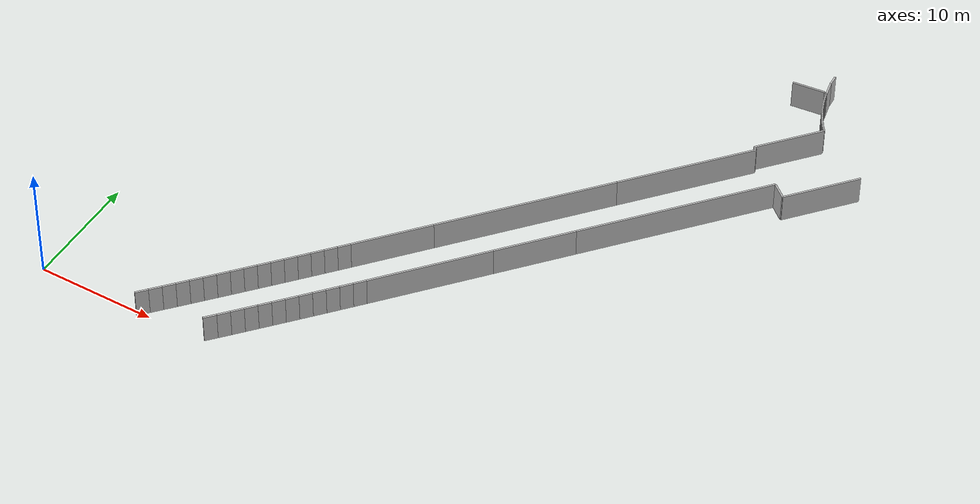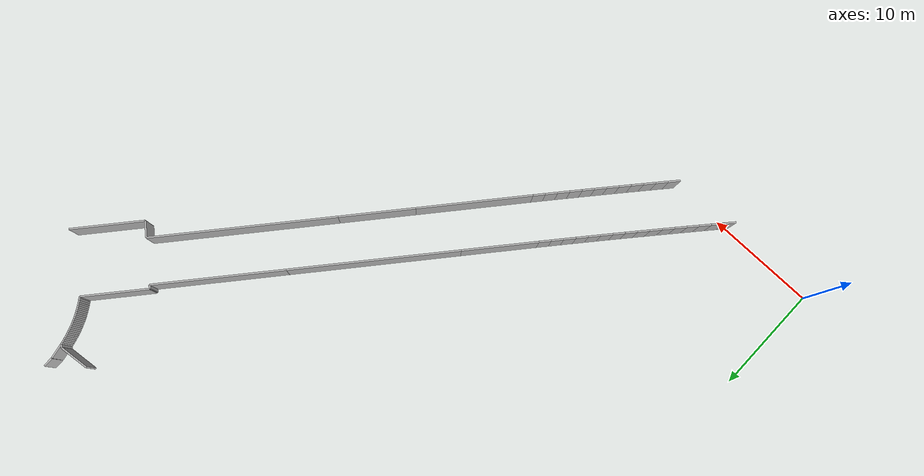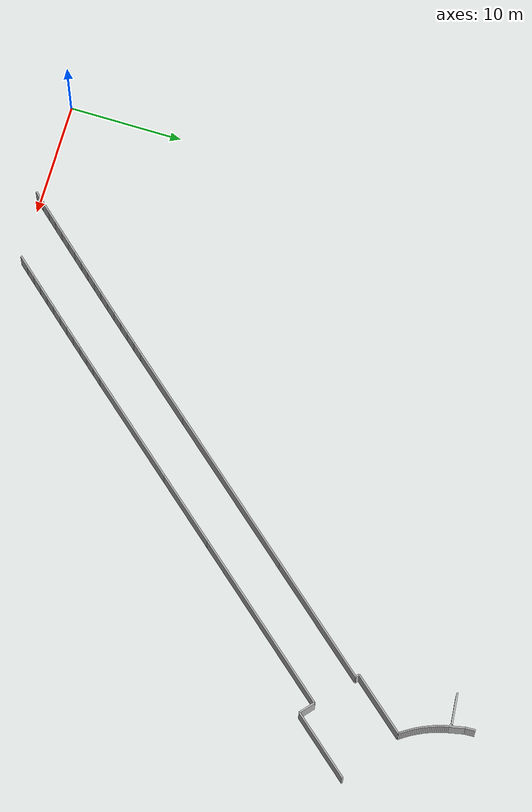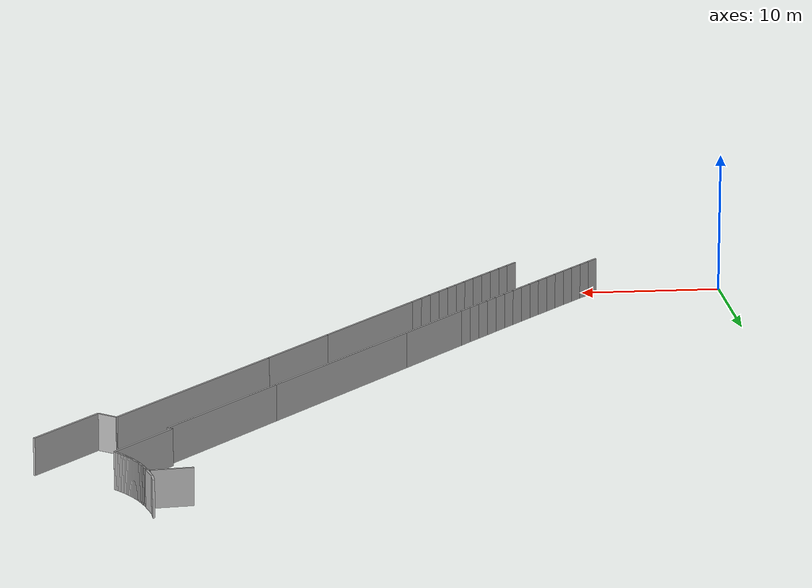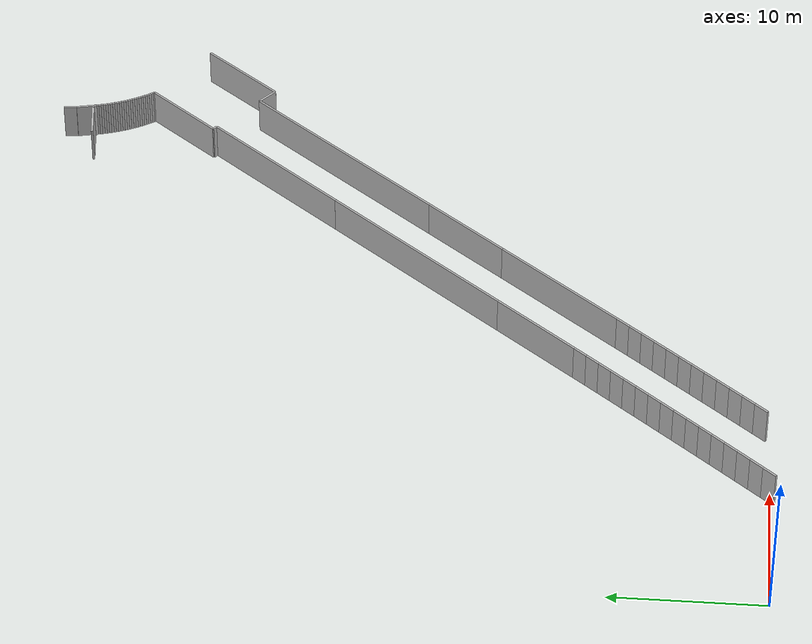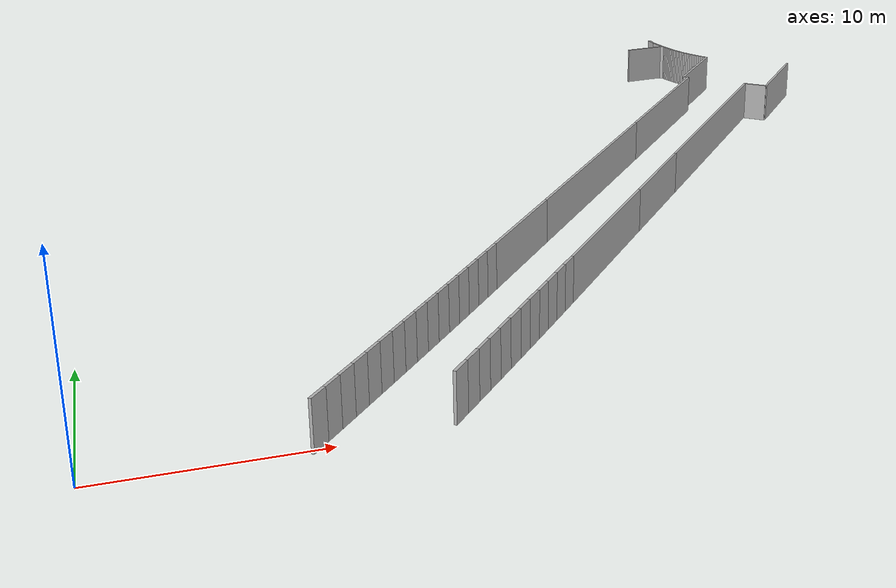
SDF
<?xml version="1.0" ?>
<sdf version="1.6">
  <model name="sps_4010">
    <pose frame="">0 0 0 0 -0 0</pose>
    <static>1</static>
    <self_collide>0</self_collide>
    <allow_auto_disable>0</allow_auto_disable>
    <link name="Wall139">
      <kinematic>0</kinematic>
      <gravity>1</gravity>
      <self_collide>0</self_collide>
      <collision name="collision">
        <geometry>
          <box>
            <size>6.63014 0.15 2.5</size>
          </box>
        </geometry>
        <pose frame="">0 0 0 0 -0 0</pose>
      </collision>
      <visual name="visual">
        <geometry>
          <box>
            <size>6.63014 0.15 2.5</size>
          </box>
        </geometry>
        <pose frame="">0 0 0 0 -0 0</pose>
        <cast_shadows>1</cast_shadows>
        <transparency>0.0</transparency>
      </visual>
      <pose frame="">48.5365 37.3412 1.25 0 -0 0.86781</pose>
    </link>
    <link name="Wall246">
      <kinematic>0</kinematic>
      <gravity>1</gravity>
      <self_collide>0</self_collide>
      <collision name="collision">
        <geometry>
          <box>
            <size>10.2849 0.15 2.5</size>
          </box>
        </geometry>
        <pose frame="">0 0 0 0 -0 0</pose>
      </collision>
      <visual name="visual">
        <geometry>
          <box>
            <size>10.2849 0.15 2.5</size>
          </box>
        </geometry>
        <pose frame="">0 0 0 0 -0 0</pose>
        <cast_shadows>1</cast_shadows>
        <transparency>0.0</transparency>
      </visual>
      <pose frame="">26.7513 13.97 1.25 0 -0 0.867762</pose>
    </link>
    <link name="Wall247">
      <kinematic>0</kinematic>
      <gravity>1</gravity>
      <self_collide>0</self_collide>
      <collision name="collision">
        <geometry>
          <box>
            <size>6.79533 0.15 2.5</size>
          </box>
        </geometry>
        <pose frame="">0 0 0 0 -0 0</pose>
      </collision>
      <visual name="visual">
        <geometry>
          <box>
            <size>6.79533 0.15 2.5</size>
          </box>
        </geometry>
        <pose frame="">0 0 0 0 -0 0</pose>
        <cast_shadows>1</cast_shadows>
        <transparency>0.0</transparency>
      </visual>
      <pose frame="">32.2727 20.4851 1.25 0 -0 0.867762</pose>
    </link>
    <link name="Wall248">
      <kinematic>0</kinematic>
      <gravity>1</gravity>
      <self_collide>0</self_collide>
      <collision name="collision">
        <geometry>
          <box>
            <size>16.6612 0.15 2.5</size>
          </box>
        </geometry>
        <pose frame="">0 0 0 0 -0 0</pose>
      </collision>
      <visual name="visual">
        <geometry>
          <box>
            <size>16.6612 0.15 2.5</size>
          </box>
        </geometry>
        <pose frame="">0 0 0 0 -0 0</pose>
        <cast_shadows>1</cast_shadows>
        <transparency>0.0</transparency>
      </visual>
      <pose frame="">39.8555 29.4324 1.25 0 -0 0.867762</pose>
    </link>
    <link name="Wall312">
      <kinematic>0</kinematic>
      <gravity>1</gravity>
      <self_collide>0</self_collide>
      <collision name="collision">
        <geometry>
          <box>
            <size>11.7757 0.15 2.5</size>
          </box>
        </geometry>
        <pose frame="">0 0 0 0 -0 0</pose>
      </collision>
      <visual name="visual">
        <geometry>
          <box>
            <size>11.7757 0.15 2.5</size>
          </box>
        </geometry>
        <pose frame="">0 0 0 0 -0 0</pose>
        <cast_shadows>1</cast_shadows>
        <transparency>0.0</transparency>
      </visual>
      <pose frame="">38.2761 33.9729 1.25 0 0 -2.27383</pose>
    </link>
    <link name="Wall313">
      <kinematic>0</kinematic>
      <gravity>1</gravity>
      <self_collide>0</self_collide>
      <collision name="collision">
        <geometry>
          <box>
            <size>15.1897 0.15 2.5</size>
          </box>
        </geometry>
        <pose frame="">0 0 0 0 -0 0</pose>
      </collision>
      <visual name="visual">
        <geometry>
          <box>
            <size>15.1897 0.15 2.5</size>
          </box>
        </geometry>
        <pose frame="">0 0 0 0 -0 0</pose>
        <cast_shadows>1</cast_shadows>
        <transparency>0.0</transparency>
      </visual>
      <pose frame="">29.5591 23.6871 1.25 0 0 -2.27383</pose>
    </link>
    <link name="Wall314">
      <kinematic>0</kinematic>
      <gravity>1</gravity>
      <self_collide>0</self_collide>
      <collision name="collision">
        <geometry>
          <box>
            <size>6.76583 0.15 2.5</size>
          </box>
        </geometry>
        <pose frame="">0 0 0 0 -0 0</pose>
      </collision>
      <visual name="visual">
        <geometry>
          <box>
            <size>6.76583 0.15 2.5</size>
          </box>
        </geometry>
        <pose frame="">0 0 0 0 -0 0</pose>
        <cast_shadows>1</cast_shadows>
        <transparency>0.0</transparency>
      </visual>
      <pose frame="">22.4616 15.3123 1.25 0 0 -2.27383</pose>
    </link>
    <link name="Wall377">
      <kinematic>0</kinematic>
      <gravity>1</gravity>
      <self_collide>0</self_collide>
      <collision name="collision">
        <geometry>
          <box>
            <size>6.00041 0.15 2.5</size>
          </box>
        </geometry>
        <pose frame="">0 0 0 0 -0 0</pose>
      </collision>
      <visual name="visual">
        <geometry>
          <box>
            <size>6.00041 0.15 2.5</size>
          </box>
        </geometry>
        <pose frame="">0 0 0 0 -0 0</pose>
        <cast_shadows>1</cast_shadows>
        <transparency>0.0</transparency>
      </visual>
      <pose frame="">43.7558 40.9795 1.25 0 0 -2.27373</pose>
    </link>
    <link name="Wall378">
      <kinematic>0</kinematic>
      <gravity>1</gravity>
      <self_collide>0</self_collide>
      <collision name="collision">
        <geometry>
          <box>
            <size>1.50944 0.15 2.5</size>
          </box>
        </geometry>
        <pose frame="">0 0 0 0 -0 0</pose>
      </collision>
      <visual name="visual">
        <geometry>
          <box>
            <size>1.50944 0.15 2.5</size>
          </box>
        </geometry>
        <pose frame="">0 0 0 0 -0 0</pose>
        <cast_shadows>1</cast_shadows>
        <transparency>0.0</transparency>
      </visual>
      <pose frame="">45.8174 35.2999 1.25 0 0 -0.702758</pose>
    </link>
    <link name="Wall470">
      <kinematic>0</kinematic>
      <gravity>1</gravity>
      <self_collide>0</self_collide>
      <collision name="collision">
        <geometry>
          <box>
            <size>0.30032 0.15 2.5</size>
          </box>
        </geometry>
        <pose frame="">0 0 0 0 -0 0</pose>
      </collision>
      <visual name="visual">
        <geometry>
          <box>
            <size>0.30032 0.15 2.5</size>
          </box>
        </geometry>
        <pose frame="">0 0 0 0 -0 0</pose>
        <cast_shadows>1</cast_shadows>
        <transparency>0.0</transparency>
      </visual>
      <pose frame="">43.7684 47.2602 1.25 0 0 -0.701374</pose>
    </link>
    <link name="Wall641">
      <kinematic>0</kinematic>
      <gravity>1</gravity>
      <self_collide>0</self_collide>
      <collision name="collision">
        <geometry>
          <box>
            <size>0.349393 0.15 2.5</size>
          </box>
        </geometry>
        <pose frame="">0 0 0 0 -0 0</pose>
      </collision>
      <visual name="visual">
        <geometry>
          <box>
            <size>0.349393 0.15 2.5</size>
          </box>
        </geometry>
        <pose frame="">0 0 0 0 -0 0</pose>
        <cast_shadows>1</cast_shadows>
        <transparency>0.0</transparency>
      </visual>
      <pose frame="">41.9495 38.5776 1.25 0 0 -0.70279</pose>
    </link>
    <link name="Wall1118">
      <kinematic>0</kinematic>
      <gravity>1</gravity>
      <self_collide>0</self_collide>
      <collision name="collision">
        <geometry>
          <box>
            <size>0.884413 0.15 2.5</size>
          </box>
        </geometry>
        <pose frame="">0 0 0 0 -0 0</pose>
      </collision>
      <visual name="visual">
        <geometry>
          <box>
            <size>0.884413 0.15 2.5</size>
          </box>
        </geometry>
        <pose frame="">0 0 0 0 -0 0</pose>
        <cast_shadows>1</cast_shadows>
        <transparency>0.0</transparency>
      </visual>
      <pose frame="">43.5749 48.9643 1.25 0 0 -1.52806</pose>
    </link>
    <link name="Wall1119">
      <kinematic>0</kinematic>
      <gravity>1</gravity>
      <self_collide>0</self_collide>
      <collision name="collision">
        <geometry>
          <box>
            <size>1.38967 0.15 2.5</size>
          </box>
        </geometry>
        <pose frame="">0 0 0 0 -0 0</pose>
      </collision>
      <visual name="visual">
        <geometry>
          <box>
            <size>1.38967 0.15 2.5</size>
          </box>
        </geometry>
        <pose frame="">0 0 0 0 -0 0</pose>
        <cast_shadows>1</cast_shadows>
        <transparency>0.0</transparency>
      </visual>
      <pose frame="">43.7385 47.8429 1.25 0 0 -1.36099</pose>
    </link>
    <link name="Wall1120">
      <kinematic>0</kinematic>
      <gravity>1</gravity>
      <self_collide>0</self_collide>
      <collision name="collision">
        <geometry>
          <box>
            <size>0.30032 0.15 2.5</size>
          </box>
        </geometry>
        <pose frame="">0 0 0 0 -0 0</pose>
      </collision>
      <visual name="visual">
        <geometry>
          <box>
            <size>0.30032 0.15 2.5</size>
          </box>
        </geometry>
        <pose frame="">0 0 0 0 -0 0</pose>
        <cast_shadows>1</cast_shadows>
        <transparency>0.0</transparency>
      </visual>
      <pose frame="">43.7685 47.2602 1.25 0 -0 2.44022</pose>
    </link>
    <link name="Wall1121">
      <kinematic>0</kinematic>
      <gravity>1</gravity>
      <self_collide>0</self_collide>
      <collision name="collision">
        <geometry>
          <box>
            <size>2.75787 0.15 2.5</size>
          </box>
        </geometry>
        <pose frame="">0 0 0 0 -0 0</pose>
      </collision>
      <visual name="visual">
        <geometry>
          <box>
            <size>2.75787 0.15 2.5</size>
          </box>
        </geometry>
        <pose frame="">0 0 0 0 -0 0</pose>
        <cast_shadows>1</cast_shadows>
        <transparency>0.0</transparency>
      </visual>
      <pose frame="">42.283 47.2083 1.25 0 0 -3.03347</pose>
    </link>
    <link name="Wall3403">
      <kinematic>0</kinematic>
      <gravity>1</gravity>
      <self_collide>0</self_collide>
      <collision name="collision">
        <geometry>
          <box>
            <size>1.07586 0.15 2.5</size>
          </box>
        </geometry>
        <pose frame="">0 0 0 0 -0 0</pose>
      </collision>
      <visual name="visual">
        <geometry>
          <box>
            <size>1.07586 0.15 2.5</size>
          </box>
        </geometry>
        <pose frame="">0 0 0 0 -0 0</pose>
        <cast_shadows>1</cast_shadows>
        <transparency>0.0</transparency>
      </visual>
      <pose frame="">9.34685 0.132613 1.25 0 -0 0.847617</pose>
    </link>
    <link name="Wall3404">
      <kinematic>0</kinematic>
      <gravity>1</gravity>
      <self_collide>0</self_collide>
      <collision name="collision">
        <geometry>
          <box>
            <size>1.07597 0.15 2.5</size>
          </box>
        </geometry>
        <pose frame="">0 0 0 0 -0 0</pose>
      </collision>
      <visual name="visual">
        <geometry>
          <box>
            <size>1.07597 0.15 2.5</size>
          </box>
        </geometry>
        <pose frame="">0 0 0 0 -0 0</pose>
        <cast_shadows>1</cast_shadows>
        <transparency>0.0</transparency>
      </visual>
      <pose frame="">10.0585 0.939589 1.25 0 -0 0.848615</pose>
    </link>
    <link name="Wall3405">
      <kinematic>0</kinematic>
      <gravity>1</gravity>
      <self_collide>0</self_collide>
      <collision name="collision">
        <geometry>
          <box>
            <size>1.07605 0.15 2.5</size>
          </box>
        </geometry>
        <pose frame="">0 0 0 0 -0 0</pose>
      </collision>
      <visual name="visual">
        <geometry>
          <box>
            <size>1.07605 0.15 2.5</size>
          </box>
        </geometry>
        <pose frame="">0 0 0 0 -0 0</pose>
        <cast_shadows>1</cast_shadows>
        <transparency>0.0</transparency>
      </visual>
      <pose frame="">10.7693 1.74739 1.25 0 -0 0.849736</pose>
    </link>
    <link name="Wall3406">
      <kinematic>0</kinematic>
      <gravity>1</gravity>
      <self_collide>0</self_collide>
      <collision name="collision">
        <geometry>
          <box>
            <size>1.07579 0.15 2.5</size>
          </box>
        </geometry>
        <pose frame="">0 0 0 0 -0 0</pose>
      </collision>
      <visual name="visual">
        <geometry>
          <box>
            <size>1.07579 0.15 2.5</size>
          </box>
        </geometry>
        <pose frame="">0 0 0 0 -0 0</pose>
        <cast_shadows>1</cast_shadows>
        <transparency>0.0</transparency>
      </visual>
      <pose frame="">11.4791 2.55598 1.25 0 -0 0.851038</pose>
    </link>
    <link name="Wall3407">
      <kinematic>0</kinematic>
      <gravity>1</gravity>
      <self_collide>0</self_collide>
      <collision name="collision">
        <geometry>
          <box>
            <size>1.07608 0.15 2.5</size>
          </box>
        </geometry>
        <pose frame="">0 0 0 0 -0 0</pose>
      </collision>
      <visual name="visual">
        <geometry>
          <box>
            <size>1.07608 0.15 2.5</size>
          </box>
        </geometry>
        <pose frame="">0 0 0 0 -0 0</pose>
        <cast_shadows>1</cast_shadows>
        <transparency>0.0</transparency>
      </visual>
      <pose frame="">12.1879 3.36537 1.25 0 -0 0.851945</pose>
    </link>
    <link name="Wall3408">
      <kinematic>0</kinematic>
      <gravity>1</gravity>
      <self_collide>0</self_collide>
      <collision name="collision">
        <geometry>
          <box>
            <size>1.07599 0.15 2.5</size>
          </box>
        </geometry>
        <pose frame="">0 0 0 0 -0 0</pose>
      </collision>
      <visual name="visual">
        <geometry>
          <box>
            <size>1.07599 0.15 2.5</size>
          </box>
        </geometry>
        <pose frame="">0 0 0 0 -0 0</pose>
        <cast_shadows>1</cast_shadows>
        <transparency>0.0</transparency>
      </visual>
      <pose frame="">12.896 4.17558 1.25 0 -0 0.853156</pose>
    </link>
    <link name="Wall3409">
      <kinematic>0</kinematic>
      <gravity>1</gravity>
      <self_collide>0</self_collide>
      <collision name="collision">
        <geometry>
          <box>
            <size>1.07595 0.15 2.5</size>
          </box>
        </geometry>
        <pose frame="">0 0 0 0 -0 0</pose>
      </collision>
      <visual name="visual">
        <geometry>
          <box>
            <size>1.07595 0.15 2.5</size>
          </box>
        </geometry>
        <pose frame="">0 0 0 0 -0 0</pose>
        <cast_shadows>1</cast_shadows>
        <transparency>0.0</transparency>
      </visual>
      <pose frame="">13.6031 4.98659 1.25 0 -0 0.854325</pose>
    </link>
    <link name="Wall3410">
      <kinematic>0</kinematic>
      <gravity>1</gravity>
      <self_collide>0</self_collide>
      <collision name="collision">
        <geometry>
          <box>
            <size>1.07604 0.15 2.5</size>
          </box>
        </geometry>
        <pose frame="">0 0 0 0 -0 0</pose>
      </collision>
      <visual name="visual">
        <geometry>
          <box>
            <size>1.07604 0.15 2.5</size>
          </box>
        </geometry>
        <pose frame="">0 0 0 0 -0 0</pose>
        <cast_shadows>1</cast_shadows>
        <transparency>0.0</transparency>
      </visual>
      <pose frame="">14.3093 5.79848 1.25 0 -0 0.855605</pose>
    </link>
    <link name="Wall3411">
      <kinematic>0</kinematic>
      <gravity>1</gravity>
      <self_collide>0</self_collide>
      <collision name="collision">
        <geometry>
          <box>
            <size>1.07599 0.15 2.5</size>
          </box>
        </geometry>
        <pose frame="">0 0 0 0 -0 0</pose>
      </collision>
      <visual name="visual">
        <geometry>
          <box>
            <size>1.07599 0.15 2.5</size>
          </box>
        </geometry>
        <pose frame="">0 0 0 0 -0 0</pose>
        <cast_shadows>1</cast_shadows>
        <transparency>0.0</transparency>
      </visual>
      <pose frame="">15.0145 6.61119 1.25 0 -0 0.856614</pose>
    </link>
    <link name="Wall3412">
      <kinematic>0</kinematic>
      <gravity>1</gravity>
      <self_collide>0</self_collide>
      <collision name="collision">
        <geometry>
          <box>
            <size>1.0762 0.15 2.5</size>
          </box>
        </geometry>
        <pose frame="">0 0 0 0 -0 0</pose>
      </collision>
      <visual name="visual">
        <geometry>
          <box>
            <size>1.0762 0.15 2.5</size>
          </box>
        </geometry>
        <pose frame="">0 0 0 0 -0 0</pose>
        <cast_shadows>1</cast_shadows>
        <transparency>0.0</transparency>
      </visual>
      <pose frame="">15.7189 7.4247 1.25 0 -0 0.857686</pose>
    </link>
    <link name="Wall3413">
      <kinematic>0</kinematic>
      <gravity>1</gravity>
      <self_collide>0</self_collide>
      <collision name="collision">
        <geometry>
          <box>
            <size>1.07569 0.15 2.5</size>
          </box>
        </geometry>
        <pose frame="">0 0 0 0 -0 0</pose>
      </collision>
      <visual name="visual">
        <geometry>
          <box>
            <size>1.07569 0.15 2.5</size>
          </box>
        </geometry>
        <pose frame="">0 0 0 0 -0 0</pose>
        <cast_shadows>1</cast_shadows>
        <transparency>0.0</transparency>
      </visual>
      <pose frame="">16.4223 8.23888 1.25 0 -0 0.858847</pose>
    </link>
    <link name="Wall3414">
      <kinematic>0</kinematic>
      <gravity>1</gravity>
      <self_collide>0</self_collide>
      <collision name="collision">
        <geometry>
          <box>
            <size>1.07613 0.15 2.5</size>
          </box>
        </geometry>
        <pose frame="">0 0 0 0 -0 0</pose>
      </collision>
      <visual name="visual">
        <geometry>
          <box>
            <size>1.07613 0.15 2.5</size>
          </box>
        </geometry>
        <pose frame="">0 0 0 0 -0 0</pose>
        <cast_shadows>1</cast_shadows>
        <transparency>0.0</transparency>
      </visual>
      <pose frame="">17.1247 9.05388 1.25 0 -0 0.860103</pose>
    </link>
    <link name="Wall3415">
      <kinematic>0</kinematic>
      <gravity>1</gravity>
      <self_collide>0</self_collide>
      <collision name="collision">
        <geometry>
          <box>
            <size>1.07592 0.15 2.5</size>
          </box>
        </geometry>
        <pose frame="">0 0 0 0 -0 0</pose>
      </collision>
      <visual name="visual">
        <geometry>
          <box>
            <size>1.07592 0.15 2.5</size>
          </box>
        </geometry>
        <pose frame="">0 0 0 0 -0 0</pose>
        <cast_shadows>1</cast_shadows>
        <transparency>0.0</transparency>
      </visual>
      <pose frame="">17.8262 9.8698 1.25 0 -0 0.861204</pose>
    </link>
    <link name="Wall3416">
      <kinematic>0</kinematic>
      <gravity>1</gravity>
      <self_collide>0</self_collide>
      <collision name="collision">
        <geometry>
          <box>
            <size>1.07608 0.15 2.5</size>
          </box>
        </geometry>
        <pose frame="">0 0 0 0 -0 0</pose>
      </collision>
      <visual name="visual">
        <geometry>
          <box>
            <size>1.07608 0.15 2.5</size>
          </box>
        </geometry>
        <pose frame="">0 0 0 0 -0 0</pose>
        <cast_shadows>1</cast_shadows>
        <transparency>0.0</transparency>
      </visual>
      <pose frame="">18.5268 10.6864 1.25 0 -0 0.862078</pose>
    </link>
    <link name="Wall3417">
      <kinematic>0</kinematic>
      <gravity>1</gravity>
      <self_collide>0</self_collide>
      <collision name="collision">
        <geometry>
          <box>
            <size>1.07604 0.15 2.5</size>
          </box>
        </geometry>
        <pose frame="">0 0 0 0 -0 0</pose>
      </collision>
      <visual name="visual">
        <geometry>
          <box>
            <size>1.07604 0.15 2.5</size>
          </box>
        </geometry>
        <pose frame="">0 0 0 0 -0 0</pose>
        <cast_shadows>1</cast_shadows>
        <transparency>0.0</transparency>
      </visual>
      <pose frame="">19.2266 11.5039 1.25 0 -0 0.86369</pose>
    </link>
    <link name="Wall3418">
      <kinematic>0</kinematic>
      <gravity>1</gravity>
      <self_collide>0</self_collide>
      <collision name="collision">
        <geometry>
          <box>
            <size>1.07602 0.15 2.5</size>
          </box>
        </geometry>
        <pose frame="">0 0 0 0 -0 0</pose>
      </collision>
      <visual name="visual">
        <geometry>
          <box>
            <size>1.07602 0.15 2.5</size>
          </box>
        </geometry>
        <pose frame="">0 0 0 0 -0 0</pose>
        <cast_shadows>1</cast_shadows>
        <transparency>0.0</transparency>
      </visual>
      <pose frame="">19.9253 12.3222 1.25 0 -0 0.864496</pose>
    </link>
    <link name="Wall4209">
      <kinematic>0</kinematic>
      <gravity>1</gravity>
      <self_collide>0</self_collide>
      <collision name="collision">
        <geometry>
          <box>
            <size>1.08076 0.15 2.5</size>
          </box>
        </geometry>
        <pose frame="">0 0 0 0 -0 0</pose>
      </collision>
      <visual name="visual">
        <geometry>
          <box>
            <size>1.08076 0.15 2.5</size>
          </box>
        </geometry>
        <pose frame="">0 0 0 0 -0 0</pose>
        <cast_shadows>1</cast_shadows>
        <transparency>0.0</transparency>
      </visual>
      <pose frame="">15.3047 0.639388 1.25 0 -0 0.852057</pose>
    </link>
    <link name="Wall4210">
      <kinematic>0</kinematic>
      <gravity>1</gravity>
      <self_collide>0</self_collide>
      <collision name="collision">
        <geometry>
          <box>
            <size>1.08067 0.15 2.5</size>
          </box>
        </geometry>
        <pose frame="">0 0 0 0 -0 0</pose>
      </collision>
      <visual name="visual">
        <geometry>
          <box>
            <size>1.08067 0.15 2.5</size>
          </box>
        </geometry>
        <pose frame="">0 0 0 0 -0 0</pose>
        <cast_shadows>1</cast_shadows>
        <transparency>0.0</transparency>
      </visual>
      <pose frame="">16.0158 1.4532 1.25 0 -0 0.853263</pose>
    </link>
    <link name="Wall4211">
      <kinematic>0</kinematic>
      <gravity>1</gravity>
      <self_collide>0</self_collide>
      <collision name="collision">
        <geometry>
          <box>
            <size>1.08075 0.15 2.5</size>
          </box>
        </geometry>
        <pose frame="">0 0 0 0 -0 0</pose>
      </collision>
      <visual name="visual">
        <geometry>
          <box>
            <size>1.08075 0.15 2.5</size>
          </box>
        </geometry>
        <pose frame="">0 0 0 0 -0 0</pose>
        <cast_shadows>1</cast_shadows>
        <transparency>0.0</transparency>
      </visual>
      <pose frame="">16.7259 2.26781 1.25 0 -0 0.854299</pose>
    </link>
    <link name="Wall4212">
      <kinematic>0</kinematic>
      <gravity>1</gravity>
      <self_collide>0</self_collide>
      <collision name="collision">
        <geometry>
          <box>
            <size>1.0807 0.15 2.5</size>
          </box>
        </geometry>
        <pose frame="">0 0 0 0 -0 0</pose>
      </collision>
      <visual name="visual">
        <geometry>
          <box>
            <size>1.0807 0.15 2.5</size>
          </box>
        </geometry>
        <pose frame="">0 0 0 0 -0 0</pose>
        <cast_shadows>1</cast_shadows>
        <transparency>0.0</transparency>
      </visual>
      <pose frame="">17.4352 3.08321 1.25 0 -0 0.855462</pose>
    </link>
    <link name="Wall4213">
      <kinematic>0</kinematic>
      <gravity>1</gravity>
      <self_collide>0</self_collide>
      <collision name="collision">
        <geometry>
          <box>
            <size>1.0808 0.15 2.5</size>
          </box>
        </geometry>
        <pose frame="">0 0 0 0 -0 0</pose>
      </collision>
      <visual name="visual">
        <geometry>
          <box>
            <size>1.0808 0.15 2.5</size>
          </box>
        </geometry>
        <pose frame="">0 0 0 0 -0 0</pose>
        <cast_shadows>1</cast_shadows>
        <transparency>0.0</transparency>
      </visual>
      <pose frame="">18.1435 3.89949 1.25 0 -0 0.856737</pose>
    </link>
    <link name="Wall4214">
      <kinematic>0</kinematic>
      <gravity>1</gravity>
      <self_collide>0</self_collide>
      <collision name="collision">
        <geometry>
          <box>
            <size>1.08075 0.15 2.5</size>
          </box>
        </geometry>
        <pose frame="">0 0 0 0 -0 0</pose>
      </collision>
      <visual name="visual">
        <geometry>
          <box>
            <size>1.08075 0.15 2.5</size>
          </box>
        </geometry>
        <pose frame="">0 0 0 0 -0 0</pose>
        <cast_shadows>1</cast_shadows>
        <transparency>0.0</transparency>
      </visual>
      <pose frame="">18.8509 4.7166 1.25 0 -0 0.857741</pose>
    </link>
    <link name="Wall4215">
      <kinematic>0</kinematic>
      <gravity>1</gravity>
      <self_collide>0</self_collide>
      <collision name="collision">
        <geometry>
          <box>
            <size>1.08084 0.15 2.5</size>
          </box>
        </geometry>
        <pose frame="">0 0 0 0 -0 0</pose>
      </collision>
      <visual name="visual">
        <geometry>
          <box>
            <size>1.08084 0.15 2.5</size>
          </box>
        </geometry>
        <pose frame="">0 0 0 0 -0 0</pose>
        <cast_shadows>1</cast_shadows>
        <transparency>0.0</transparency>
      </visual>
      <pose frame="">19.5575 5.5345 1.25 0 -0 0.858936</pose>
    </link>
    <link name="Wall4216">
      <kinematic>0</kinematic>
      <gravity>1</gravity>
      <self_collide>0</self_collide>
      <collision name="collision">
        <geometry>
          <box>
            <size>1.08045 0.15 2.5</size>
          </box>
        </geometry>
        <pose frame="">0 0 0 0 -0 0</pose>
      </collision>
      <visual name="visual">
        <geometry>
          <box>
            <size>1.08045 0.15 2.5</size>
          </box>
        </geometry>
        <pose frame="">0 0 0 0 -0 0</pose>
        <cast_shadows>1</cast_shadows>
        <transparency>0.0</transparency>
      </visual>
      <pose frame="">20.263 6.35307 1.25 0 -0 0.859964</pose>
    </link>
    <link name="Wall4217">
      <kinematic>0</kinematic>
      <gravity>1</gravity>
      <self_collide>0</self_collide>
      <collision name="collision">
        <geometry>
          <box>
            <size>1.0809 0.15 2.5</size>
          </box>
        </geometry>
        <pose frame="">0 0 0 0 -0 0</pose>
      </collision>
      <visual name="visual">
        <geometry>
          <box>
            <size>1.0809 0.15 2.5</size>
          </box>
        </geometry>
        <pose frame="">0 0 0 0 -0 0</pose>
        <cast_shadows>1</cast_shadows>
        <transparency>0.0</transparency>
      </visual>
      <pose frame="">20.9676 7.17247 1.25 0 -0 0.861215</pose>
    </link>
    <link name="Wall4218">
      <kinematic>0</kinematic>
      <gravity>1</gravity>
      <self_collide>0</self_collide>
      <collision name="collision">
        <geometry>
          <box>
            <size>1.08069 0.15 2.5</size>
          </box>
        </geometry>
        <pose frame="">0 0 0 0 -0 0</pose>
      </collision>
      <visual name="visual">
        <geometry>
          <box>
            <size>1.08069 0.15 2.5</size>
          </box>
        </geometry>
        <pose frame="">0 0 0 0 -0 0</pose>
        <cast_shadows>1</cast_shadows>
        <transparency>0.0</transparency>
      </visual>
      <pose frame="">21.6713 7.99278 1.25 0 -0 0.862311</pose>
    </link>
    <link name="Wall4219">
      <kinematic>0</kinematic>
      <gravity>1</gravity>
      <self_collide>0</self_collide>
      <collision name="collision">
        <geometry>
          <box>
            <size>1.08065 0.15 2.5</size>
          </box>
        </geometry>
        <pose frame="">0 0 0 0 -0 0</pose>
      </collision>
      <visual name="visual">
        <geometry>
          <box>
            <size>1.08065 0.15 2.5</size>
          </box>
        </geometry>
        <pose frame="">0 0 0 0 -0 0</pose>
        <cast_shadows>1</cast_shadows>
        <transparency>0.0</transparency>
      </visual>
      <pose frame="">22.374 8.8138 1.25 0 -0 0.863475</pose>
    </link>
    <link name="Wall4220">
      <kinematic>0</kinematic>
      <gravity>1</gravity>
      <self_collide>0</self_collide>
      <collision name="collision">
        <geometry>
          <box>
            <size>1.08088 0.15 2.5</size>
          </box>
        </geometry>
        <pose frame="">0 0 0 0 -0 0</pose>
      </collision>
      <visual name="visual">
        <geometry>
          <box>
            <size>1.08088 0.15 2.5</size>
          </box>
        </geometry>
        <pose frame="">0 0 0 0 -0 0</pose>
        <cast_shadows>1</cast_shadows>
        <transparency>0.0</transparency>
      </visual>
      <pose frame="">23.0758 9.6357 1.25 0 -0 0.86462</pose>
    </link>
    <link name="Wall7200">
      <kinematic>0</kinematic>
      <gravity>1</gravity>
      <self_collide>0</self_collide>
      <collision name="collision">
        <geometry>
          <box>
            <size>0.160273 0.15 2.5</size>
          </box>
        </geometry>
        <pose frame="">0 0 0 0 -0 0</pose>
      </collision>
      <visual name="visual">
        <geometry>
          <box>
            <size>0.160273 0.15 2.5</size>
          </box>
        </geometry>
        <pose frame="">0 0 0 0 -0 0</pose>
        <cast_shadows>1</cast_shadows>
        <transparency>0.0</transparency>
      </visual>
      <pose frame="">43.9011 47.0852 1.25 0 0 -1.34457</pose>
    </link>
    <link name="Wall7201">
      <kinematic>0</kinematic>
      <gravity>1</gravity>
      <self_collide>0</self_collide>
      <collision name="collision">
        <geometry>
          <box>
            <size>0.160304 0.15 2.5</size>
          </box>
        </geometry>
        <pose frame="">0 0 0 0 -0 0</pose>
      </collision>
      <visual name="visual">
        <geometry>
          <box>
            <size>0.160304 0.15 2.5</size>
          </box>
        </geometry>
        <pose frame="">0 0 0 0 -0 0</pose>
        <cast_shadows>1</cast_shadows>
        <transparency>0.0</transparency>
      </visual>
      <pose frame="">43.9383 46.9293 1.25 0 0 -1.32739</pose>
    </link>
    <link name="Wall7202">
      <kinematic>0</kinematic>
      <gravity>1</gravity>
      <self_collide>0</self_collide>
      <collision name="collision">
        <geometry>
          <box>
            <size>0.160363 0.15 2.5</size>
          </box>
        </geometry>
        <pose frame="">0 0 0 0 -0 0</pose>
      </collision>
      <visual name="visual">
        <geometry>
          <box>
            <size>0.160363 0.15 2.5</size>
          </box>
        </geometry>
        <pose frame="">0 0 0 0 -0 0</pose>
        <cast_shadows>1</cast_shadows>
        <transparency>0.0</transparency>
      </visual>
      <pose frame="">43.9782 46.774 1.25 0 0 -1.31216</pose>
    </link>
    <link name="Wall7203">
      <kinematic>0</kinematic>
      <gravity>1</gravity>
      <self_collide>0</self_collide>
      <collision name="collision">
        <geometry>
          <box>
            <size>0.16045 0.15 2.5</size>
          </box>
        </geometry>
        <pose frame="">0 0 0 0 -0 0</pose>
      </collision>
      <visual name="visual">
        <geometry>
          <box>
            <size>0.16045 0.15 2.5</size>
          </box>
        </geometry>
        <pose frame="">0 0 0 0 -0 0</pose>
        <cast_shadows>1</cast_shadows>
        <transparency>0.0</transparency>
      </visual>
      <pose frame="">44.0205 46.6193 1.25 0 0 -1.29574</pose>
    </link>
    <link name="Wall7204">
      <kinematic>0</kinematic>
      <gravity>1</gravity>
      <self_collide>0</self_collide>
      <collision name="collision">
        <geometry>
          <box>
            <size>0.160312 0.15 2.5</size>
          </box>
        </geometry>
        <pose frame="">0 0 0 0 -0 0</pose>
      </collision>
      <visual name="visual">
        <geometry>
          <box>
            <size>0.160312 0.15 2.5</size>
          </box>
        </geometry>
        <pose frame="">0 0 0 0 -0 0</pose>
        <cast_shadows>1</cast_shadows>
        <transparency>0.0</transparency>
      </visual>
      <pose frame="">44.0653 46.4653 1.25 0 0 -1.27963</pose>
    </link>
    <link name="Wall7205">
      <kinematic>0</kinematic>
      <gravity>1</gravity>
      <self_collide>0</self_collide>
      <collision name="collision">
        <geometry>
          <box>
            <size>0.160543 0.15 2.5</size>
          </box>
        </geometry>
        <pose frame="">0 0 0 0 -0 0</pose>
      </collision>
      <visual name="visual">
        <geometry>
          <box>
            <size>0.160543 0.15 2.5</size>
          </box>
        </geometry>
        <pose frame="">0 0 0 0 -0 0</pose>
        <cast_shadows>1</cast_shadows>
        <transparency>0.0</transparency>
      </visual>
      <pose frame="">44.1126 46.312 1.25 0 0 -1.26335</pose>
    </link>
    <link name="Wall7206">
      <kinematic>0</kinematic>
      <gravity>1</gravity>
      <self_collide>0</self_collide>
      <collision name="collision">
        <geometry>
          <box>
            <size>0.160237 0.15 2.5</size>
          </box>
        </geometry>
        <pose frame="">0 0 0 0 -0 0</pose>
      </collision>
      <visual name="visual">
        <geometry>
          <box>
            <size>0.160237 0.15 2.5</size>
          </box>
        </geometry>
        <pose frame="">0 0 0 0 -0 0</pose>
        <cast_shadows>1</cast_shadows>
        <transparency>0.0</transparency>
      </visual>
      <pose frame="">44.1623 46.1595 1.25 0 0 -1.24832</pose>
    </link>
    <link name="Wall7207">
      <kinematic>0</kinematic>
      <gravity>1</gravity>
      <self_collide>0</self_collide>
      <collision name="collision">
        <geometry>
          <box>
            <size>0.160397 0.15 2.5</size>
          </box>
        </geometry>
        <pose frame="">0 0 0 0 -0 0</pose>
      </collision>
      <visual name="visual">
        <geometry>
          <box>
            <size>0.160397 0.15 2.5</size>
          </box>
        </geometry>
        <pose frame="">0 0 0 0 -0 0</pose>
        <cast_shadows>1</cast_shadows>
        <transparency>0.0</transparency>
      </visual>
      <pose frame="">44.2143 46.0079 1.25 0 0 -1.23136</pose>
    </link>
    <link name="Wall7208">
      <kinematic>0</kinematic>
      <gravity>1</gravity>
      <self_collide>0</self_collide>
      <collision name="collision">
        <geometry>
          <box>
            <size>0.160175 0.15 2.5</size>
          </box>
        </geometry>
        <pose frame="">0 0 0 0 -0 0</pose>
      </collision>
      <visual name="visual">
        <geometry>
          <box>
            <size>0.160175 0.15 2.5</size>
          </box>
        </geometry>
        <pose frame="">0 0 0 0 -0 0</pose>
        <cast_shadows>1</cast_shadows>
        <transparency>0.0</transparency>
      </visual>
      <pose frame="">44.2689 45.8572 1.25 0 0 -1.21506</pose>
    </link>
    <link name="Wall7209">
      <kinematic>0</kinematic>
      <gravity>1</gravity>
      <self_collide>0</self_collide>
      <collision name="collision">
        <geometry>
          <box>
            <size>0.160359 0.15 2.5</size>
          </box>
        </geometry>
        <pose frame="">0 0 0 0 -0 0</pose>
      </collision>
      <visual name="visual">
        <geometry>
          <box>
            <size>0.160359 0.15 2.5</size>
          </box>
        </geometry>
        <pose frame="">0 0 0 0 -0 0</pose>
        <cast_shadows>1</cast_shadows>
        <transparency>0.0</transparency>
      </visual>
      <pose frame="">44.3259 45.7074 1.25 0 0 -1.1992</pose>
    </link>
    <link name="Wall7210">
      <kinematic>0</kinematic>
      <gravity>1</gravity>
      <self_collide>0</self_collide>
      <collision name="collision">
        <geometry>
          <box>
            <size>0.160334 0.15 2.5</size>
          </box>
        </geometry>
        <pose frame="">0 0 0 0 -0 0</pose>
      </collision>
      <visual name="visual">
        <geometry>
          <box>
            <size>0.160334 0.15 2.5</size>
          </box>
        </geometry>
        <pose frame="">0 0 0 0 -0 0</pose>
        <cast_shadows>1</cast_shadows>
        <transparency>0.0</transparency>
      </visual>
      <pose frame="">44.3854 45.5585 1.25 0 0 -1.18315</pose>
    </link>
    <link name="Wall7211">
      <kinematic>0</kinematic>
      <gravity>1</gravity>
      <self_collide>0</self_collide>
      <collision name="collision">
        <geometry>
          <box>
            <size>0.160391 0.15 2.5</size>
          </box>
        </geometry>
        <pose frame="">0 0 0 0 -0 0</pose>
      </collision>
      <visual name="visual">
        <geometry>
          <box>
            <size>0.160391 0.15 2.5</size>
          </box>
        </geometry>
        <pose frame="">0 0 0 0 -0 0</pose>
        <cast_shadows>1</cast_shadows>
        <transparency>0.0</transparency>
      </visual>
      <pose frame="">44.4471 45.4105 1.25 0 0 -1.16845</pose>
    </link>
    <link name="Wall7212">
      <kinematic>0</kinematic>
      <gravity>1</gravity>
      <self_collide>0</self_collide>
      <collision name="collision">
        <geometry>
          <box>
            <size>0.160297 0.15 2.5</size>
          </box>
        </geometry>
        <pose frame="">0 0 0 0 -0 0</pose>
      </collision>
      <visual name="visual">
        <geometry>
          <box>
            <size>0.160297 0.15 2.5</size>
          </box>
        </geometry>
        <pose frame="">0 0 0 0 -0 0</pose>
        <cast_shadows>1</cast_shadows>
        <transparency>0.0</transparency>
      </visual>
      <pose frame="">44.5112 45.2635 1.25 0 0 -1.15075</pose>
    </link>
    <link name="Wall7213">
      <kinematic>0</kinematic>
      <gravity>1</gravity>
      <self_collide>0</self_collide>
      <collision name="collision">
        <geometry>
          <box>
            <size>0.1604 0.15 2.5</size>
          </box>
        </geometry>
        <pose frame="">0 0 0 0 -0 0</pose>
      </collision>
      <visual name="visual">
        <geometry>
          <box>
            <size>0.1604 0.15 2.5</size>
          </box>
        </geometry>
        <pose frame="">0 0 0 0 -0 0</pose>
        <cast_shadows>1</cast_shadows>
        <transparency>0.0</transparency>
      </visual>
      <pose frame="">44.5777 45.1176 1.25 0 0 -1.13557</pose>
    </link>
    <link name="Wall7214">
      <kinematic>0</kinematic>
      <gravity>1</gravity>
      <self_collide>0</self_collide>
      <collision name="collision">
        <geometry>
          <box>
            <size>0.160264 0.15 2.5</size>
          </box>
        </geometry>
        <pose frame="">0 0 0 0 -0 0</pose>
      </collision>
      <visual name="visual">
        <geometry>
          <box>
            <size>0.160264 0.15 2.5</size>
          </box>
        </geometry>
        <pose frame="">0 0 0 0 -0 0</pose>
        <cast_shadows>1</cast_shadows>
        <transparency>0.0</transparency>
      </visual>
      <pose frame="">44.6465 44.9728 1.25 0 0 -1.11873</pose>
    </link>
    <link name="Wall7215">
      <kinematic>0</kinematic>
      <gravity>1</gravity>
      <self_collide>0</self_collide>
      <collision name="collision">
        <geometry>
          <box>
            <size>0.160363 0.15 2.5</size>
          </box>
        </geometry>
        <pose frame="">0 0 0 0 -0 0</pose>
      </collision>
      <visual name="visual">
        <geometry>
          <box>
            <size>0.160363 0.15 2.5</size>
          </box>
        </geometry>
        <pose frame="">0 0 0 0 -0 0</pose>
        <cast_shadows>1</cast_shadows>
        <transparency>0.0</transparency>
      </visual>
      <pose frame="">44.7176 44.8291 1.25 0 0 -1.10374</pose>
    </link>
    <link name="Wall7216">
      <kinematic>0</kinematic>
      <gravity>1</gravity>
      <self_collide>0</self_collide>
      <collision name="collision">
        <geometry>
          <box>
            <size>0.160422 0.15 2.5</size>
          </box>
        </geometry>
        <pose frame="">0 0 0 0 -0 0</pose>
      </collision>
      <visual name="visual">
        <geometry>
          <box>
            <size>0.160422 0.15 2.5</size>
          </box>
        </geometry>
        <pose frame="">0 0 0 0 -0 0</pose>
        <cast_shadows>1</cast_shadows>
        <transparency>0.0</transparency>
      </visual>
      <pose frame="">44.791 44.6865 1.25 0 0 -1.08724</pose>
    </link>
    <link name="Wall7217">
      <kinematic>0</kinematic>
      <gravity>1</gravity>
      <self_collide>0</self_collide>
      <collision name="collision">
        <geometry>
          <box>
            <size>0.16047 0.15 2.5</size>
          </box>
        </geometry>
        <pose frame="">0 0 0 0 -0 0</pose>
      </collision>
      <visual name="visual">
        <geometry>
          <box>
            <size>0.16047 0.15 2.5</size>
          </box>
        </geometry>
        <pose frame="">0 0 0 0 -0 0</pose>
        <cast_shadows>1</cast_shadows>
        <transparency>0.0</transparency>
      </visual>
      <pose frame="">44.8668 44.5451 1.25 0 0 -1.07057</pose>
    </link>
    <link name="Wall7218">
      <kinematic>0</kinematic>
      <gravity>1</gravity>
      <self_collide>0</self_collide>
      <collision name="collision">
        <geometry>
          <box>
            <size>0.160253 0.15 2.5</size>
          </box>
        </geometry>
        <pose frame="">0 0 0 0 -0 0</pose>
      </collision>
      <visual name="visual">
        <geometry>
          <box>
            <size>0.160253 0.15 2.5</size>
          </box>
        </geometry>
        <pose frame="">0 0 0 0 -0 0</pose>
        <cast_shadows>1</cast_shadows>
        <transparency>0.0</transparency>
      </visual>
      <pose frame="">44.9448 44.405 1.25 0 0 -1.055</pose>
    </link>
    <link name="Wall7219">
      <kinematic>0</kinematic>
      <gravity>1</gravity>
      <self_collide>0</self_collide>
      <collision name="collision">
        <geometry>
          <box>
            <size>0.160263 0.15 2.5</size>
          </box>
        </geometry>
        <pose frame="">0 0 0 0 -0 0</pose>
      </collision>
      <visual name="visual">
        <geometry>
          <box>
            <size>0.160263 0.15 2.5</size>
          </box>
        </geometry>
        <pose frame="">0 0 0 0 -0 0</pose>
        <cast_shadows>1</cast_shadows>
        <transparency>0.0</transparency>
      </visual>
      <pose frame="">45.0249 44.2662 1.25 0 0 -1.03965</pose>
    </link>
    <link name="Wall7220">
      <kinematic>0</kinematic>
      <gravity>1</gravity>
      <self_collide>0</self_collide>
      <collision name="collision">
        <geometry>
          <box>
            <size>0.160523 0.15 2.5</size>
          </box>
        </geometry>
        <pose frame="">0 0 0 0 -0 0</pose>
      </collision>
      <visual name="visual">
        <geometry>
          <box>
            <size>0.160523 0.15 2.5</size>
          </box>
        </geometry>
        <pose frame="">0 0 0 0 -0 0</pose>
        <cast_shadows>1</cast_shadows>
        <transparency>0.0</transparency>
      </visual>
      <pose frame="">45.1073 44.1286 1.25 0 0 -1.02288</pose>
    </link>
    <link name="Wall7221">
      <kinematic>0</kinematic>
      <gravity>1</gravity>
      <self_collide>0</self_collide>
      <collision name="collision">
        <geometry>
          <box>
            <size>0.160153 0.15 2.5</size>
          </box>
        </geometry>
        <pose frame="">0 0 0 0 -0 0</pose>
      </collision>
      <visual name="visual">
        <geometry>
          <box>
            <size>0.160153 0.15 2.5</size>
          </box>
        </geometry>
        <pose frame="">0 0 0 0 -0 0</pose>
        <cast_shadows>1</cast_shadows>
        <transparency>0.0</transparency>
      </visual>
      <pose frame="">45.1919 43.9924 1.25 0 0 -1.00711</pose>
    </link>
    <link name="Wall7222">
      <kinematic>0</kinematic>
      <gravity>1</gravity>
      <self_collide>0</self_collide>
      <collision name="collision">
        <geometry>
          <box>
            <size>0.1605 0.15 2.5</size>
          </box>
        </geometry>
        <pose frame="">0 0 0 0 -0 0</pose>
      </collision>
      <visual name="visual">
        <geometry>
          <box>
            <size>0.1605 0.15 2.5</size>
          </box>
        </geometry>
        <pose frame="">0 0 0 0 -0 0</pose>
        <cast_shadows>1</cast_shadows>
        <transparency>0.0</transparency>
      </visual>
      <pose frame="">45.2786 43.8576 1.25 0 0 -0.990388</pose>
    </link>
    <link name="Wall7223">
      <kinematic>0</kinematic>
      <gravity>1</gravity>
      <self_collide>0</self_collide>
      <collision name="collision">
        <geometry>
          <box>
            <size>0.160312 0.15 2.5</size>
          </box>
        </geometry>
        <pose frame="">0 0 0 0 -0 0</pose>
      </collision>
      <visual name="visual">
        <geometry>
          <box>
            <size>0.160312 0.15 2.5</size>
          </box>
        </geometry>
        <pose frame="">0 0 0 0 -0 0</pose>
        <cast_shadows>1</cast_shadows>
        <transparency>0.0</transparency>
      </visual>
      <pose frame="">45.3675 43.7241 1.25 0 0 -0.976352</pose>
    </link>
    <link name="Wall7224">
      <kinematic>0</kinematic>
      <gravity>1</gravity>
      <self_collide>0</self_collide>
      <collision name="collision">
        <geometry>
          <box>
            <size>0.160342 0.15 2.5</size>
          </box>
        </geometry>
        <pose frame="">0 0 0 0 -0 0</pose>
      </collision>
      <visual name="visual">
        <geometry>
          <box>
            <size>0.160342 0.15 2.5</size>
          </box>
        </geometry>
        <pose frame="">0 0 0 0 -0 0</pose>
        <cast_shadows>1</cast_shadows>
        <transparency>0.0</transparency>
      </visual>
      <pose frame="">45.4585 43.5921 1.25 0 0 -0.957981</pose>
    </link>
    <link name="Wall7225">
      <kinematic>0</kinematic>
      <gravity>1</gravity>
      <self_collide>0</self_collide>
      <collision name="collision">
        <geometry>
          <box>
            <size>0.160384 0.15 2.5</size>
          </box>
        </geometry>
        <pose frame="">0 0 0 0 -0 0</pose>
      </collision>
      <visual name="visual">
        <geometry>
          <box>
            <size>0.160384 0.15 2.5</size>
          </box>
        </geometry>
        <pose frame="">0 0 0 0 -0 0</pose>
        <cast_shadows>1</cast_shadows>
        <transparency>0.0</transparency>
      </visual>
      <pose frame="">45.5517 43.4616 1.25 0 0 -0.943203</pose>
    </link>
    <link name="Wall7226">
      <kinematic>0</kinematic>
      <gravity>1</gravity>
      <self_collide>0</self_collide>
      <collision name="collision">
        <geometry>
          <box>
            <size>0.160401 0.15 2.5</size>
          </box>
        </geometry>
        <pose frame="">0 0 0 0 -0 0</pose>
      </collision>
      <visual name="visual">
        <geometry>
          <box>
            <size>0.160401 0.15 2.5</size>
          </box>
        </geometry>
        <pose frame="">0 0 0 0 -0 0</pose>
        <cast_shadows>1</cast_shadows>
        <transparency>0.0</transparency>
      </visual>
      <pose frame="">45.6471 43.3326 1.25 0 0 -0.925773</pose>
    </link>
  </model>
</sdf>
